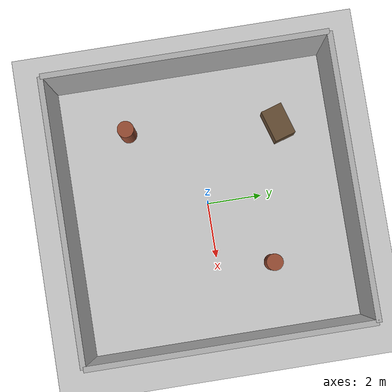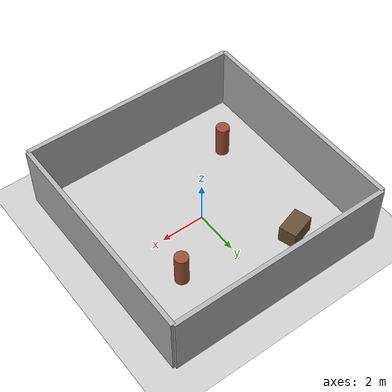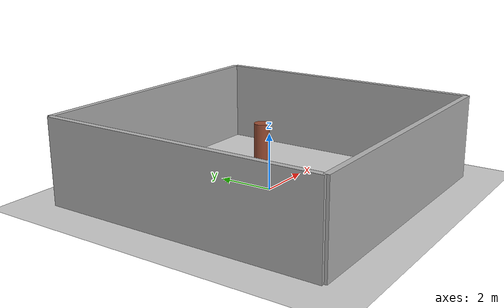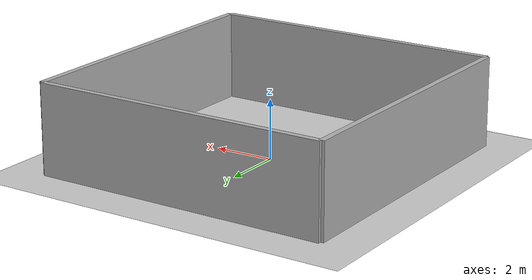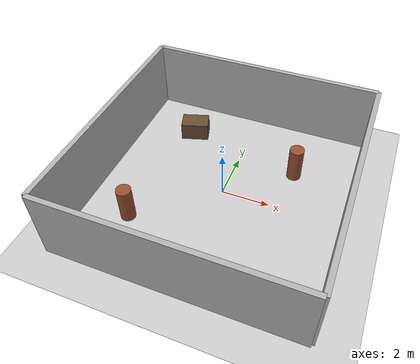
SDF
<?xml version="1.0" ?>
<sdf version="1.9">
  <world name="empty">

    <!-- ======== Plugins systemes (indispensables Harmonic) ======== -->
    <plugin filename="gz-sim-physics-system"
            name="gz::sim::systems::Physics"/>
    <plugin filename="gz-sim-scene-broadcaster-system"
            name="gz::sim::systems::SceneBroadcaster"/>
    <plugin filename="gz-sim-user-commands-system"
            name="gz::sim::systems::UserCommands"/>
    <plugin filename="gz-sim-contact-system"
            name="gz::sim::systems::Contact"/>
    <!-- gz-sim-sensors-system est charge par le xacro du robot -->

    <!-- ======== Eclairage ======== -->
    <light type="directional" name="sun">
      <cast_shadows>true</cast_shadows>
      <pose>0 0 10 0 0 0</pose>
      <diffuse>0.8 0.8 0.8 1</diffuse>
      <specular>0.2 0.2 0.2 1</specular>
      <direction>-0.5 0.1 -0.9</direction>
    </light>

    <!-- ======== Sol ======== -->
    <model name="ground_plane">
      <static>true</static>
      <link name="link">
        <collision name="collision">
          <geometry><plane><normal>0 0 1</normal><size>100 100</size></plane></geometry>
        </collision>
        <visual name="visual">
          <geometry><plane><normal>0 0 1</normal><size>100 100</size></plane></geometry>
          <material>
            <ambient>0.8 0.8 0.8 1</ambient>
            <diffuse>0.8 0.8 0.8 1</diffuse>
          </material>
        </visual>
      </link>
    </model>

    <!-- Mur Nord (y = +5) -->
    <model name="wall_north">
      <static>true</static>
      <pose>0 5 1.5 0 0 0</pose>
      <link name="link">
        <collision name="collision">
          <geometry><box><size>10 0.2 3</size></box></geometry>
        </collision>
        <visual name="visual">
          <geometry><box><size>10 0.2 3</size></box></geometry>
          <material>
            <ambient>0.7 0.7 0.7 1</ambient>
            <diffuse>0.7 0.7 0.7 1</diffuse>
          </material>
        </visual>
      </link>
    </model>

    <!-- Mur Sud (y = -5) -->
    <model name="wall_south">
      <static>true</static>
      <pose>0 -5 1.5 0 0 0</pose>
      <link name="link">
        <collision name="collision">
          <geometry><box><size>10 0.2 3</size></box></geometry>
        </collision>
        <visual name="visual">
          <geometry><box><size>10 0.2 3</size></box></geometry>
          <material>
            <ambient>0.7 0.7 0.7 1</ambient>
            <diffuse>0.7 0.7 0.7 1</diffuse>
          </material>
        </visual>
      </link>
    </model>

    <!-- Mur Est (x = +5) -->
    <model name="wall_east">
      <static>true</static>
      <pose>5 0 1.5 0 0 0</pose>
      <link name="link">
        <collision name="collision">
          <geometry><box><size>0.2 10 3</size></box></geometry>
        </collision>
        <visual name="visual">
          <geometry><box><size>0.2 10 3</size></box></geometry>
          <material>
            <ambient>0.7 0.7 0.7 1</ambient>
            <diffuse>0.7 0.7 0.7 1</diffuse>
          </material>
        </visual>
      </link>
    </model>

    <!-- Mur Ouest (x = -5) -->
    <model name="wall_west">
      <static>true</static>
      <pose>-5 0 1.5 0 0 0</pose>
      <link name="link">
        <collision name="collision">
          <geometry><box><size>0.2 10 3</size></box></geometry>
        </collision>
        <visual name="visual">
          <geometry><box><size>0.2 10 3</size></box></geometry>
          <material>
            <ambient>0.7 0.7 0.7 1</ambient>
            <diffuse>0.7 0.7 0.7 1</diffuse>
          </material>
        </visual>
      </link>
    </model>

    <!-- Colonne cylindrique -->
    <model name="pillar_1">
      <static>true</static>
      <pose>2.5 2.0 0.75 0 0 0</pose>
      <link name="link">
        <collision name="collision">
          <geometry><cylinder><radius>0.3</radius><length>1.5</length></cylinder></geometry>
        </collision>
        <visual name="visual">
          <geometry><cylinder><radius>0.3</radius><length>1.5</length></cylinder></geometry>
          <material>
            <ambient>0.6 0.3 0.2 1</ambient>
            <diffuse>0.6 0.3 0.2 1</diffuse>
          </material>
        </visual>
      </link>
    </model>

    <!-- Colonne cylindrique (2eme, opposee) -->
    <model name="pillar_2">
      <static>true</static>
      <pose>-3.0 -2.5 0.75 0 0 0</pose>
      <link name="link">
        <collision name="collision">
          <geometry><cylinder><radius>0.3</radius><length>1.5</length></cylinder></geometry>
        </collision>
        <visual name="visual">
          <geometry><cylinder><radius>0.3</radius><length>1.5</length></cylinder></geometry>
          <material>
            <ambient>0.6 0.3 0.2 1</ambient>
            <diffuse>0.6 0.3 0.2 1</diffuse>
          </material>
        </visual>
      </link>
    </model>

    <!-- Boite (obstacle plus large) -->
    <model name="crate_1">
      <static>true</static>
      <pose>-2.5 3.0 0.4 0 0 0.3</pose>
      <link name="link">
        <collision name="collision">
          <geometry><box><size>1.2 0.8 0.8</size></box></geometry>
        </collision>
        <visual name="visual">
          <geometry><box><size>1.2 0.8 0.8</size></box></geometry>
          <material>
            <ambient>0.4 0.3 0.2 1</ambient>
            <diffuse>0.4 0.3 0.2 1</diffuse>
          </material>
        </visual>
      </link>
    </model>

  </world>
</sdf>
